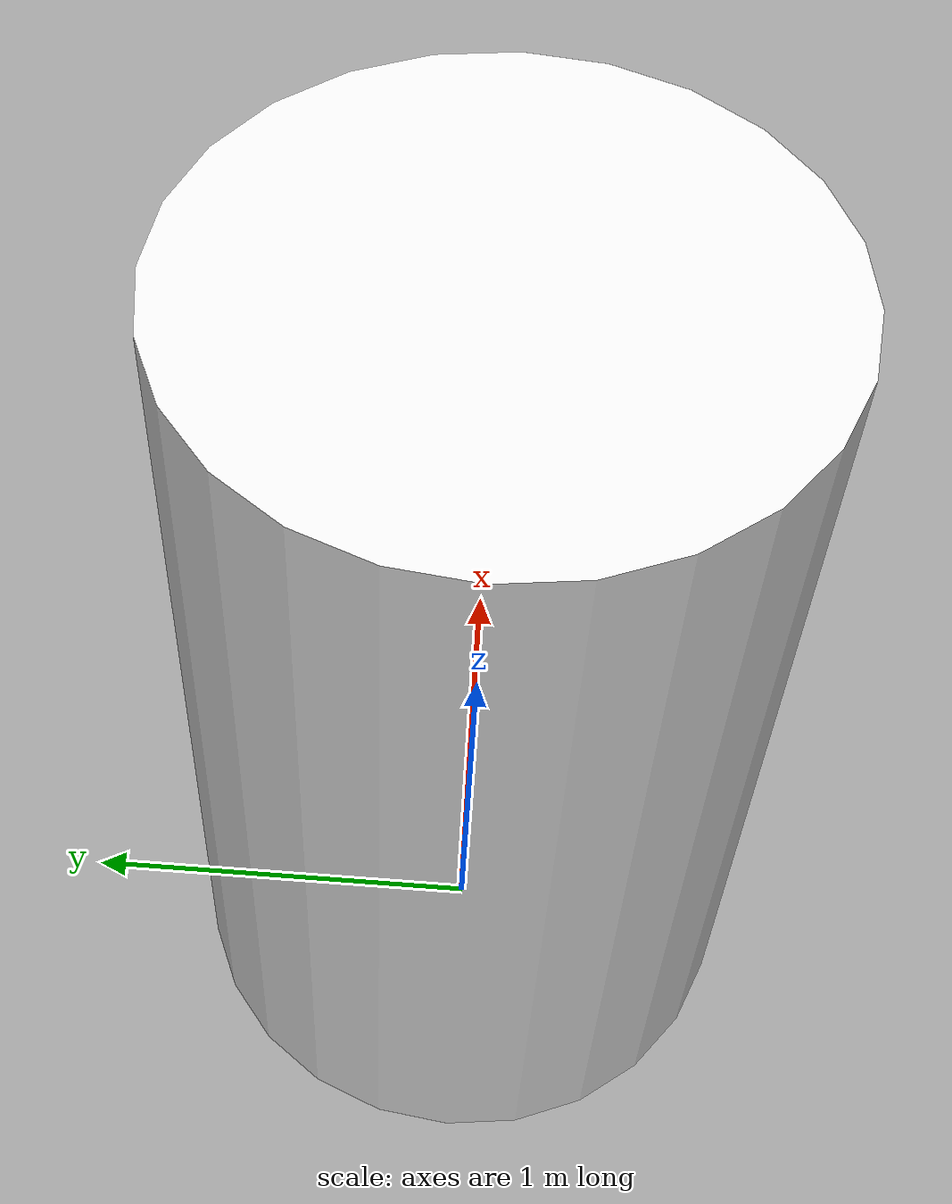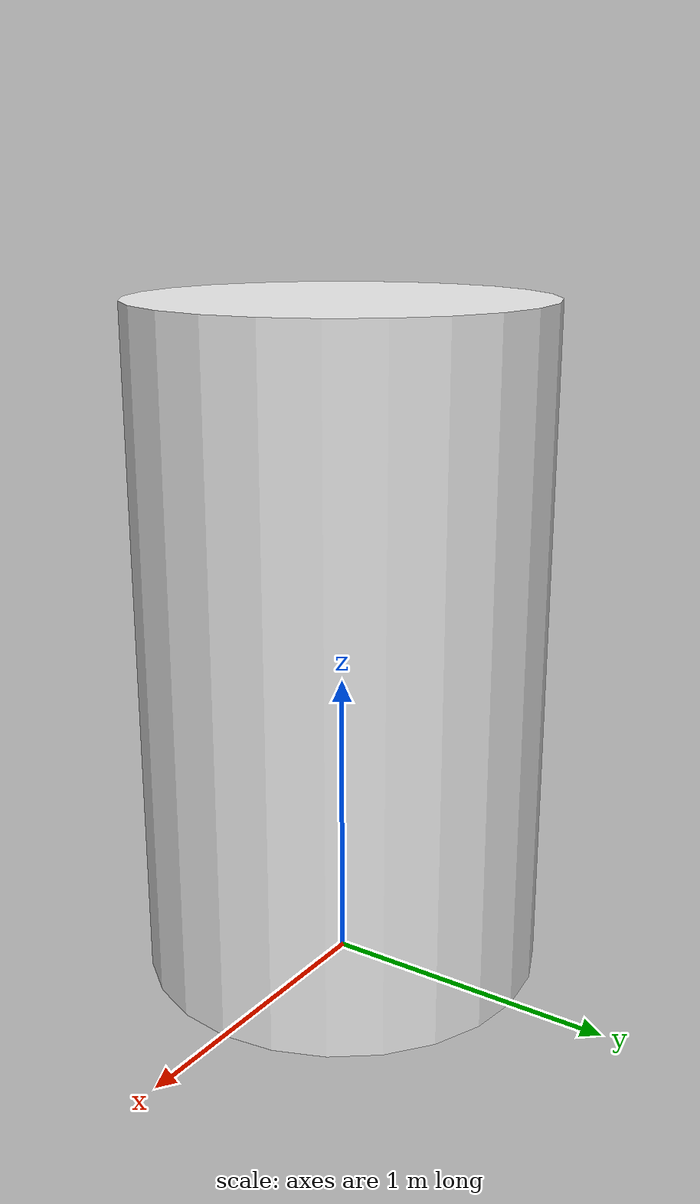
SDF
<?xml version='1.0'?>
<sdf version='1.6'>
  <model name='obstacles'>
    <pose frame=''>0 0 0 0 0 0</pose>
    <link name='obstacle'>
      <collision name='obstacle_center'>
        <pose>0 0 1.125 0 0 0</pose> <!-- Adjusted Z pose for visibility -->
        <geometry>
          <cylinder>
            <radius>0.675</radius> <!-- Radius slightly reduced from the doubled size -->
            <length>2.25</length> <!-- Length slightly reduced from the doubled size -->
          </cylinder>
        </geometry>
        <max_contacts>10</max_contacts>
        <surface>
          <bounce/>
          <friction>
            <ode/>
          </friction>
          <contact>
            <ode/>
          </contact>
        </surface>
      </collision>

      <visual name='obstacle_center'>
        <pose>0 0 1.125 0 0 0</pose> <!-- Matching collision component -->
        <geometry>
          <cylinder>
            <radius>0.675</radius> <!-- Matching the collision geometry -->
            <length>2.25</length> <!-- Matching the collision geometry -->
          </cylinder>
        </geometry>
        <material>
          <script>
            <uri>file://media/materials/scripts/gazebo.material</uri>
            <name>Gazebo/White</name>
          </script>
        </material>
      </visual>
    </link>
    <static>1</static>
  </model>
</sdf>
